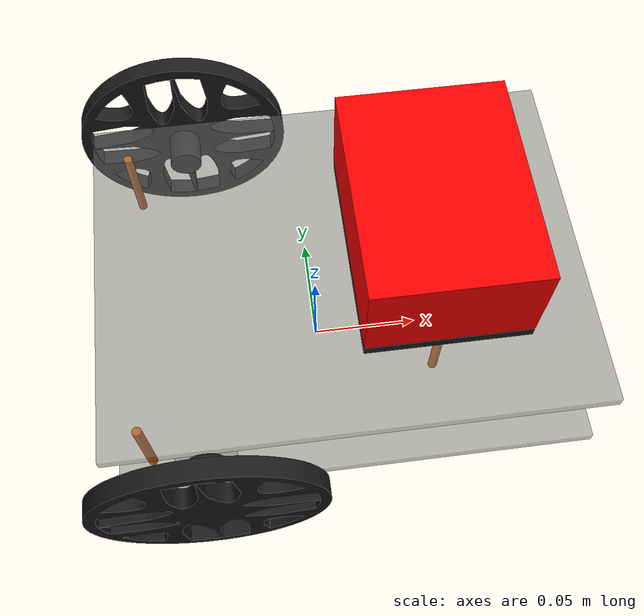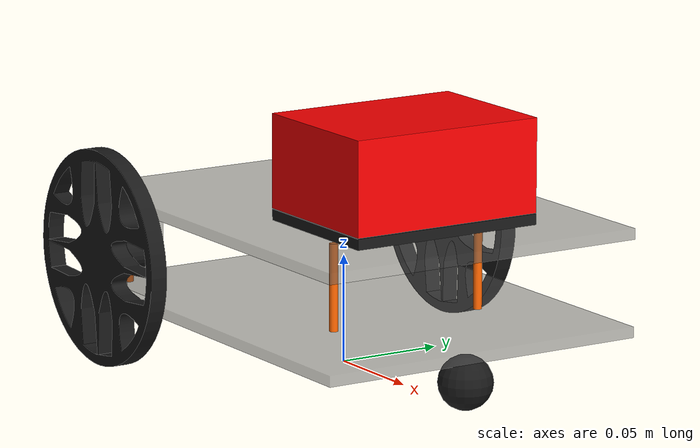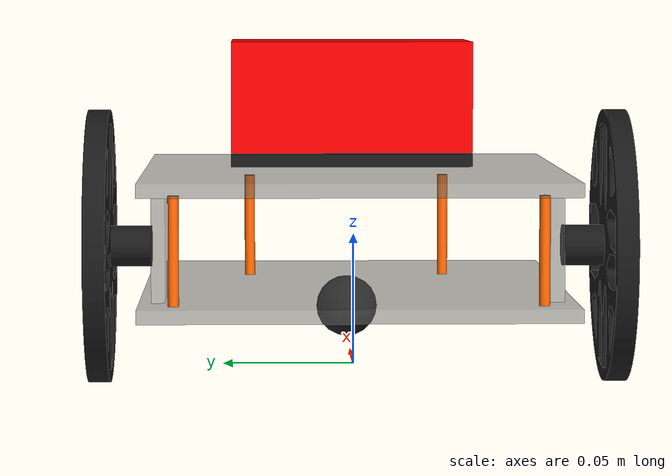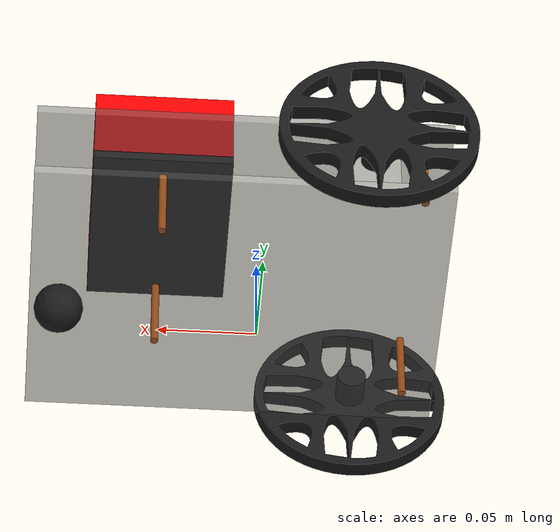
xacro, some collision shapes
<?xml version="1.0"?>
<robot name="puzzlebot" xmlns:xacro="http://ros.org/wiki/xacro">
  <xacro:property name="package_name" value="puzzlebot_queza"/>
  <xacro:property name="PI" value="3.14159265"/>
  <xacro:property name="wheelSeparation" value="0.189"/>
  <xacro:property name="wheelDiameter" value="0.10"/>
  <xacro:property name="wheelThickness" value="0.008"/>
  <xacro:property name="base_elevation" value="0.025"/>

  <xacro:arg name="base_color"    default="0.0 1.0 0.0 1.0"/>
  <xacro:arg name="ns" default="r1"/>

  <material name="gray">
    <color rgba="0.4 0.4 0.4 0.5"/>
  </material>

  <material name="black">
    <color rgba="0.1 0.1 0.1 1.0"/>
  </material>

  <material name="golden">
    <color rgba="1.0 0.4 0.0 1.0"/>
  </material>

  <material name="red">
    <color rgba="1.0 0.0 0.0 1.0"/>
  </material>

  <link name="$(arg ns)/base_footprint"/>

  <joint name="$(arg ns)/base1_joint" type="fixed">
    <parent link="$(arg ns)/base_footprint"/>
    <child link="$(arg ns)/base1_link"/>
    <origin xyz="0 0 ${wheelDiameter/2-base_elevation}" rpy = "0 0 0"/> <!--0 ${wheelSeparation/2} ${wheelDiameter/2-base_elevation}-->
    <axis xyz="0 0 0"/>
  </joint>

  <link name="$(arg ns)/base1_link">
    <visual>
      <origin xyz="0.0 0.0 0.0" rpy="0 0 ${PI}"/>
      <geometry>
        <mesh filename = "package://${package_name}/meshes/base_puzzlebot.stl" scale="0.01 0.01 0.01"/>
      </geometry>
      <material name="gray"/>
    </visual>
    <collision>
      <origin xyz="0.01 0 0.0025" rpy="0 0 ${PI/2}"/>
      <geometry>
        <box size="0.16 0.21 0.005"/>
      </geometry>
    </collision>
    <!-- Collision tag added to stabilize the robot -->
    <collision>
      <origin xyz="-0.07 0 -0.015" rpy="0 0 0" />
      <geometry>
        <sphere radius="0.01" />
      </geometry>
    </collision>
    <inertial>
      <origin xyz="-0.0550 0 0" rpy="0 0 0"/>
      <mass value="1.485"/>
      <inertia ixx="0.00576" ixy="0.0" ixz="0.0" iyy="0.00347" iyz="0.0" izz="0.00862" />
    </inertial>
  </link>

  <joint name="$(arg ns)/base2_joint" type="fixed">
      <parent link="$(arg ns)/base1_link"/>
      <child link="$(arg ns)/base2_link"/>
      <origin xyz="0 0 ${wheelDiameter/2-base_elevation + 0.020}" rpy = "0 0 0"/>
      <axis xyz="0 0 0"/>
    </joint>

    <link name="$(arg ns)/base2_link">
      <visual>
        <origin xyz="0 0 0" rpy="0 0 ${PI}"/>
        <geometry>
          <mesh filename = "package://${package_name}/meshes/base_puzzlebot.stl" scale="0.01 0.01 0.01"/>
        </geometry>
        <material name="gray"/>
      </visual>
      <collision>
        <origin xyz="0.01 0 0.0025" rpy="0 0 ${PI/2}"/>
        <geometry>
          <box size="0.16 0.21 0.005"/>
        </geometry>
      </collision>
    </link>

  <joint name="$(arg ns)/standoff_joint_1" type="fixed">
    <parent link="$(arg ns)/base1_link"/>
    <child link="$(arg ns)/standoff1_link"/>
    <origin xyz="0.05 0.04 ${wheelDiameter/2-base_elevation}" rpy = "0 0 0"/>
    <axis xyz="0 0 0"/>
  </joint>

  <link name="$(arg ns)/standoff1_link">
    <visual>
      <origin xyz="0 0 0" rpy="0 0 0"/>
      <geometry>
        <cylinder length="0.04" radius="0.002"/>
      </geometry>
      <material name="golden"/>
    </visual>
    <collision>
      <origin xyz="0 0 0" rpy="0 0 0"/>
      <geometry>
        <cylinder length="0.04" radius="0.002"/>
      </geometry>
    </collision>
  </link>

  <joint name="$(arg ns)/standoff_joint_2" type="fixed">
    <parent link="$(arg ns)/base1_link"/>
    <child link="$(arg ns)/standoff2_link"/>
    <origin xyz="0.05 -0.037 ${wheelDiameter/2-base_elevation}" rpy = "0 0 0"/>
    <axis xyz="0 0 0"/>
  </joint>

  <link name="$(arg ns)/standoff2_link">
    <visual>
      <origin xyz="0 0 0" rpy="0 0 0"/>
      <geometry>
        <cylinder length="0.04" radius="0.002"/>
      </geometry>
      <material name="golden"/>
    </visual>
    <collision>
      <origin xyz="0 0 0" rpy="0 0 0"/>
      <geometry>
        <cylinder length="0.04" radius="0.002"/>
      </geometry>
    </collision>
  </link>

  <joint name="$(arg ns)/standoff_joint_3" type="fixed">
    <parent link="$(arg ns)/base1_link"/>
    <child link="$(arg ns)/standoff3_link"/>
    <origin xyz="-0.08 -0.067  ${wheelDiameter/2-base_elevation}" rpy = "0 0 0"/>
    <axis xyz="0 0 0"/>
  </joint>

  <link name="$(arg ns)/standoff3_link">
    <visual>
      <origin xyz="0 0 0" rpy="0 0 0"/>
      <geometry>
        <cylinder length="0.04" radius="0.002"/>
      </geometry>
      <material name="golden"/>
    </visual>
    <collision>
      <origin xyz="0 0 0" rpy="0 0 0"/>
      <geometry>
        <cylinder length="0.04" radius="0.002"/>
      </geometry>
    </collision>
  </link>

  <joint name="$(arg ns)/standoff_joint_4" type="fixed">
    <parent link="$(arg ns)/base1_link"/>
    <child link="$(arg ns)/standoff4_link"/>
    <origin xyz="-0.08 0.067 ${wheelDiameter/2-base_elevation}" rpy = "0 0 0"/>
    <axis xyz="0 0 0"/>
  </joint>

  <link name="$(arg ns)/standoff4_link">
    <visual>
      <origin xyz="0 0 0" rpy="0 0 0"/>
      <geometry>
        <cylinder length="0.04" radius="0.002"/>
      </geometry>
      <material name="golden"/>
    </visual>
    <collision>
      <origin xyz="0 0 0" rpy="0 0 0"/>
      <geometry>
        <cylinder length="0.04" radius="0.002"/>
      </geometry>
    </collision>
  </link>

  <joint name="$(arg ns)/base_panel_right_wheel_joint" type="fixed">
    <parent link="$(arg ns)/base1_link"/>
    <child link="$(arg ns)/right_panel_link"/>
    <origin xyz="-0.0550 0.073 ${wheelDiameter/2-base_elevation}" rpy = "0 0 0"/>
    <axis xyz="0 0 0"/>
  </joint>

  <link name="$(arg ns)/right_panel_link">
    <visual>
      <origin xyz="0 0 0" rpy="0 0 0"/>
      <geometry>
        <box size="0.025 0.005 0.04"/>
      </geometry>
      <material name="gray"/>
    </visual>
    <collision>
      <origin xyz="0 0 0" rpy="0 0 0"/>
      <geometry>
        <box size="0.025 0.005 0.04"/>
      </geometry>
    </collision>
  </link>

  <joint name="$(arg ns)/base_panel_left_wheel_joint" type="fixed">
    <parent link="$(arg ns)/base1_link"/>
    <child link="$(arg ns)/left_panel_link"/>
    <origin xyz="-0.0550 -0.073 ${wheelDiameter/2-base_elevation}" rpy = "0 0 0"/>
    <axis xyz="0 0 0"/>
  </joint>

  <link name="$(arg ns)/left_panel_link">
    <visual>
      <origin xyz="0 0 0" rpy="0 0 0"/>
      <geometry>
        <box size="0.025 0.005 0.04"/>
      </geometry>
      <material name="gray"/>
    </visual>
    <collision>
      <origin xyz="0 0 0" rpy="0 0 0"/>
      <geometry>
        <box size="0.025 0.005 0.04"/>
      </geometry>
    </collision>
  </link>

  <joint name="$(arg ns)/cylinder_wheel_right_joint" type="fixed">
    <parent link="$(arg ns)/right_panel_link"/>
    <child link="$(arg ns)/cylinder_wheel_right_link"/>
    <origin xyz="0 0.01 0" rpy = "0 0 0"/>
    <axis xyz="0 0 0"/>
  </joint>

  <link name="$(arg ns)/cylinder_wheel_right_link">
    <visual>
      <origin xyz="0 0 0" rpy="${PI/2} 0 0"/>
      <geometry>
        <cylinder length="0.015" radius="0.0075"/>
      </geometry>
      <material name="black"/>
    </visual>
    <collision>
      <origin xyz="0 0 0" rpy="${PI/2} 0 0"/>
      <geometry>
        <cylinder length="0.015" radius="0.0075"/>
      </geometry>
    </collision>
  </link>

  <joint name="$(arg ns)/cylinder_wheel_left_joint" type="fixed">
    <parent link="$(arg ns)/left_panel_link"/>
    <child link="$(arg ns)/cylinder_wheel_left_link"/>
    <origin xyz="0 -0.01 0" rpy = "0 0 0"/>
    <axis xyz="0 0 0"/>
  </joint>

  <link name="$(arg ns)/cylinder_wheel_left_link">
    <visual>
      <origin xyz="0 0 0" rpy="${-PI/2} 0 0"/>
      <geometry>
        <cylinder length="0.015" radius="0.0075"/>
      </geometry>
      <material name="black"/>
    </visual>
    <collision>
      <origin xyz="0 0 0" rpy="${-PI/2} 0 0"/>
      <geometry>
        <cylinder length="0.015" radius="0.0075"/>
      </geometry>
    </collision>
  </link>

  <joint name="$(arg ns)/wheel_right_joint" type="continuous">
    <parent link="$(arg ns)/cylinder_wheel_right_link"/>
    <child link="$(arg ns)/wheel_right_link"/>
    <origin xyz="0 0.0155 0" rpy = "0 0 0"/>
    <axis xyz="0 -1 0"/>
  </joint>

  <link name="$(arg ns)/wheel_right_link">
    <visual>
      <origin xyz="0 0 0" rpy="${PI/2} 0 0"/>
      <geometry>
        <mesh filename = "package://${package_name}/meshes/rueda_puzzlebot.stl" scale="0.001 0.001 0.001"/>
      </geometry>
      <material name="black"/>
    </visual>
    <collision>
      <origin xyz="0 -0.005 0" rpy="${PI/2} 0 0"/>
      <geometry>
        <cylinder length="0.008" radius="0.05"/>
      </geometry>
    </collision>
    <inertial>
      <origin xyz="0 0 0" />
      <mass value="0.056" />
      <inertia ixx="0.000035" ixy="0.0" ixz="0.0" iyy="0.00007" iyz="0.0" izz="0.000035" />
    </inertial>
  </link>

  <joint name="$(arg ns)/wheel_left_joint" type="continuous">
    <parent link="$(arg ns)/cylinder_wheel_left_link"/>
    <child link="$(arg ns)/wheel_left_link"/>
    <origin xyz="0.0 -0.0075 0" rpy = "0 0 0"/>
    <axis xyz="0 -1 0"/>
  </joint>

  <link name="$(arg ns)/wheel_left_link">
    <visual>
      <origin xyz="0 0 0" rpy="${PI/2} 0 0"/>
      <geometry>
        <mesh filename = "package://${package_name}/meshes/rueda_puzzlebot.stl" scale="0.001 0.001 0.001"/>
      </geometry>
      <material name="black"/>
    </visual>
    <collision>
      <origin xyz="0 0 0" rpy="${PI/2} 0 0"/>
      <geometry>
        <cylinder length="0.008" radius="0.05"/>
      </geometry>
    </collision>
    <inertial>
      <origin xyz="0 0 0" />
      <mass value="0.056" />
      <inertia ixx="0.000035" ixy="0.0" ixz="0.0" iyy="0.00007" iyz="0.0" izz="0.000035" />
    </inertial>
  </link>

  <joint name="$(arg ns)/caster_wheel_joint" type="fixed">
    <parent link="$(arg ns)/base1_link"/>
    <child link="$(arg ns)/caster_wheel_link"/>
    <origin xyz="0.1 0 -0.0125" rpy="0 0 0"/>
  </joint>

  <link name="$(arg ns)/caster_wheel_link">
    <visual>
      <origin xyz="0 0 0" rpy="0 0 0"/>
      <geometry>
        <sphere radius="0.0125"/>
      </geometry>
      <material name="black"/>
    </visual>

    <collision>
      <origin xyz="0 0 0" rpy="0 0 0"/>
      <geometry>
        <sphere radius="0.0125"/>
      </geometry>
    </collision>

    <inertial>
      <mass value="0.01"/>
      <origin xyz="0 0 0" rpy="0 0 0"/>
      <inertia
        ixx="0.000000625" ixy="0" ixz="0"
        iyy="0.000000625" iyz="0"
        izz="0.000000625"/>
    </inertial>
  </link>

   <!-- Camara LOGI -->

   <joint name="$(arg ns)/base_camera_logi_joint" type="fixed">
    <parent link="$(arg ns)/base2_link"/>
    <child link="$(arg ns)/base_camera_logi_link"/>
    <origin xyz="0.05 0 0.0075" rpy="0 0 0"/>
  </joint>

  <link name="$(arg ns)/base_camera_logi_link">
    <visual>
      <origin xyz="0 0 0" rpy="0 0 0"/>
      <geometry>
        <box size="0.071 0.094 0.005"/>
      </geometry>
      <material name="black"/>
    </visual>
    <collision>
      <origin xyz="0 0 0" rpy="0 0 0"/>
      <geometry>
        <box size="0.071 0.094 0.005"/>
      </geometry>
    </collision>
  </link>

  <joint name="$(arg ns)/logi_camera_joint" type="fixed">
    <parent link="$(arg ns)/base_camera_logi_link"/>
    <child link="$(arg ns)/logi_camera_link"/>
    <origin xyz="0 0 0.0245" rpy="0 0 0"/>
    <axis xyz="0 0 1" />
  </joint>

  <link name="$(arg ns)/logi_camera_link">
    <visual>
      <origin xyz="0 0 0" rpy="0 0 0"/>
      <geometry>
        <box size="0.071 0.094 0.0433"/>
      </geometry>
      <material name="red"/>
    </visual>
    <collision>
      <origin xyz="0 0 0" rpy="0 0 0"/>
      <geometry>
        <box size="0.071 0.094 0.0433"/>
      </geometry>
    </collision>
  </link>

  <gazebo reference="$(arg ns)/logi_camera_link">
    <sensor name="camera" type="camera">
      <ignition_frame_id>$(arg ns)/logi_camera_link</ignition_frame_id>
      <optical_frame_id>$(arg ns)/logi_camera_link</optical_frame_id>
      <camera>
        <horizontal_fov>1.229</horizontal_fov>
        <image>
          <width>1920</width>
          <height>1080</height>
          <format>R8G8B8</format>
        </image>
        <camera_info_topic>$(arg ns)/camera/camera_info</camera_info_topic>
        <clip>
          <near>0.1</near>
          <far>100</far>
        </clip>
        <distortion>
          <k1>0</k1>
          <k2>0</k2>
          <k3>0</k3>
          <p1>0</p1>
          <p2>0</p2>
          <center>0.5 0.5</center>
        </distortion>
      </camera>
      <always_on>1</always_on>
      <update_rate>10</update_rate>
      <visualize>false</visualize>
      <topic>$(arg ns)/camera/image_raw</topic>
      <enable_metrics>true</enable_metrics>
    </sensor>
  </gazebo>

   <!-- IMU -->
  <gazebo reference = "$(arg ns)/base_footprint">
    <sensor name = "imu_sensor" type="imu">
      <ignition_frame_id>$(arg ns)/base_footprint</ignition_frame_id>
      <always_on>1</always_on>
      <update_rate>50</update_rate>
      <visualize>false</visualize>
      <topic>$(arg ns)/imu</topic>
      <imu>
        <enable_orientation>0</enable_orientation>
        <angular_velocity>
          <x>
            <noise type = "gaussian">
              <mean>0</mean>
              <stddev>0.009</stddev>
              <bias_mean>0.00075</bias_mean>
              <bias_stddev>0.005</bias_stddev>
              <dynamic_bias_stddev>0.00002</dynamic_bias_stddev>
              <precision>0.00025</precision>
            </noise>
          </x>
          <y>
            <noise type = "gaussian">
              <mean>0</mean>
              <stddev>0.009</stddev>
              <bias_mean>0.00075</bias_mean>
              <bias_stddev>0.005</bias_stddev>
              <dynamic_bias_stddev>0.00002</dynamic_bias_stddev>
              <precision>0.00025</precision>
            </noise>
          </y>
          <z>
            <noise type = "gaussian">
              <mean>0</mean>
              <stddev>0.009</stddev>
              <bias_mean>0.00075</bias_mean>
              <bias_stddev>0.005</bias_stddev>
              <dynamic_bias_stddev>0.00002</dynamic_bias_stddev>
              <precision>0.00025</precision>
            </noise>
          </z>
        </angular_velocity>
        <linear_acceleration>
          <x>
            <noise type = "gaussian">
              <mean>0</mean>
              <stddev>0.021</stddev>
              <bias_mean>0.05</bias_mean>
              <bias_stddev>0.0075</bias_stddev>
              <dynamic_bias_stddev>0.000375</dynamic_bias_stddev>
              <dynamic_bias_correlation_time>175.0</dynamic_bias_correlation_time>
              <precision>0.005</precision>
            </noise>
          </x>
          <y>
            <noise type = "gaussian">
              <mean>0</mean>
              <stddev>0.021</stddev>
              <bias_mean>0.05</bias_mean>
              <bias_stddev>0.0075</bias_stddev>
              <dynamic_bias_stddev>0.000375</dynamic_bias_stddev>
              <dynamic_bias_correlation_time>175.0</dynamic_bias_correlation_time>
              <precision>0.005</precision>
            </noise>
          </y>
          <z>
            <noise type = "gaussian">
              <mean>0</mean>
              <stddev>0.021</stddev>
              <bias_mean>0.05</bias_mean>
              <bias_stddev>0.0075</bias_stddev>
              <dynamic_bias_stddev>0.000375</dynamic_bias_stddev>
              <dynamic_bias_correlation_time>175.0</dynamic_bias_correlation_time>
              <precision>0.005</precision>
            </noise>
          </z>
        </linear_acceleration>
      </imu>
    </sensor>
  </gazebo>

  <gazebo>
    <plugin
      filename="ignition-gazebo-diff-drive-system"
      name="ignition::gazebo::systems::DiffDrive">
      <left_joint>$(arg ns)/wheel_left_joint</left_joint>
      <right_joint>$(arg ns)/wheel_right_joint</right_joint>
      <wheel_separation>${wheelSeparation}</wheel_separation>
      <wheel_radius>${wheelDiameter/2}</wheel_radius>
      <odom_publish_frequency>20</odom_publish_frequency>
      <max_linear_acceleration>0.5</max_linear_acceleration>
      <min_linear_acceleration>-0.5</min_linear_acceleration>
      <max_angular_acceleration>2</max_angular_acceleration>
      <min_angular_acceleration>-2</min_angular_acceleration>
      <max_linear_velocity>0.5</max_linear_velocity>
      <min_linear_velocity>-0.3</min_linear_velocity>
      <max_angular_velocity>1</max_angular_velocity>
      <min_angular_velocity>-1</min_angular_velocity>
    </plugin>

    <plugin
      filename="gz-sim-joint-state-publisher-system"
      name="gz::sim::systems::JointStatePublisher">
    </plugin>

  </gazebo>

  <gazebo reference="$(arg ns)/caster_wheel_link">
    <mu1>0.01</mu1>
    <mu2>0.01</mu2>
    <kp>1000000.0</kp>
    <kd>1.0</kd>
  </gazebo>

</robot>
